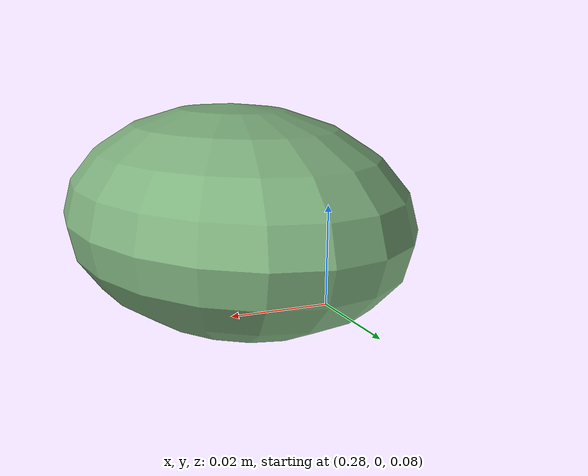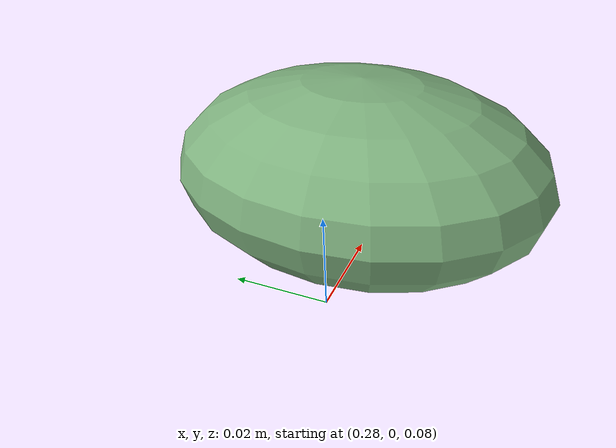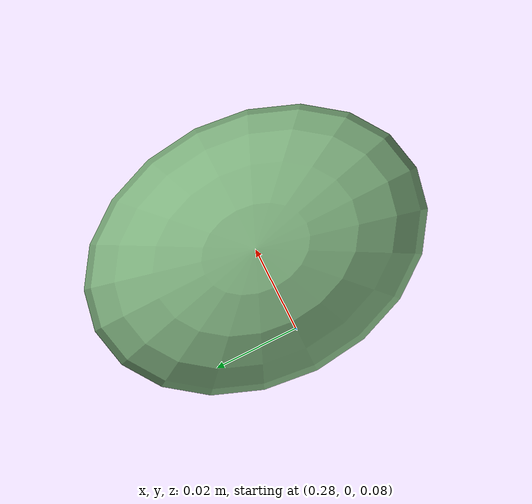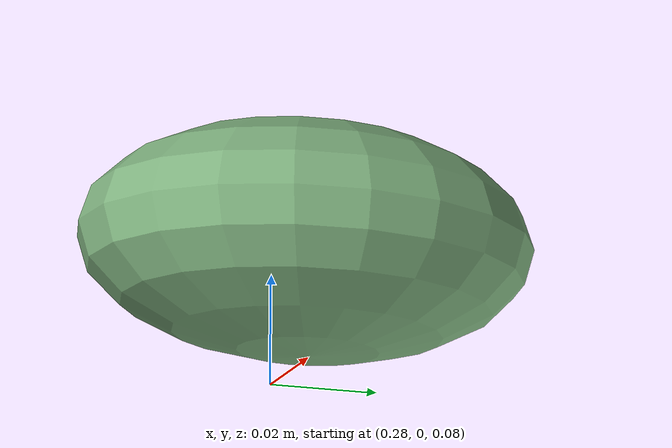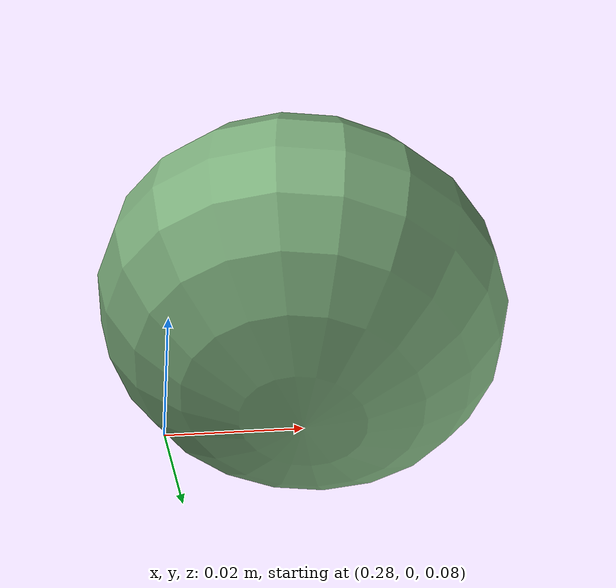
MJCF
<mujoco model="right_shadow_hand scene">
  <include file="right_hand.xml"/>

  <statistic extent="0.3" center="0.3 0 0"/>

  <visual>
    <rgba haze="0.15 0.25 0.35 1"/>
    <quality shadowsize="8192"/>
    <global azimuth="220" elevation="-30"/>
  </visual>

  <asset>
    <texture type="skybox" builtin="gradient" rgb1="0.3 0.5 0.7" rgb2="0 0 0" width="512" height="3072"/>
    <texture type="2d" name="groundplane" builtin="checker" mark="edge" rgb1="0.2 0.3 0.4" rgb2="0.1 0.2 0.3"
      markrgb="0.8 0.8 0.8" width="300" height="300"/>
    <material name="groundplane" texture="groundplane" texuniform="true" texrepeat="5 5" reflectance="0.2"/>
  </asset>

  <worldbody>
    <light pos="0 0 1"/>
    <light pos="0.3 0 1.5" dir="0 0 -1" directional="true"/>
    <geom name="floor" pos="0 0 -0.1" size="0 0 0.05" type="plane" material="groundplane"/>
    <body name="object" pos="0.3 0 0.1">
      <freejoint/>
      <geom type="ellipsoid" size="0.03 0.04 0.02" rgba="0.5 0.7 0.5 1" condim="6" priority="1"
        friction="0.5 0.01 0.003"/>
    </body>
  </worldbody>
</mujoco>

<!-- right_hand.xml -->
<mujoco model="right_shadow_hand">

      <body name="rh_wrist" pos="0.01 0 0.15301" quat="1 0 0 1">
        <inertial mass="0.1" pos="0 0 0.029" quat="0.5 0.5 0.5 0.5" diaginertia="6.4e-05 4.38e-05 3.5e-05"/>
        <joint class="right_wrist_y" name="rh_WRJ2"/>
        <geom class="right_plastic_visual" mesh="right_wrist" material="metallic"/>
        <geom size="0.011 0.005" pos="-0.026 0 0.034" quat="1 0 1 0" type="cylinder" class="right_plastic_collision"/>
        <geom size="0.011 0.005" pos="0.031 0 0.034" quat="1 0 1 0" type="cylinder" class="right_plastic_collision"/>
        <geom size="0.0135 0.009 0.005" pos="-0.021 0 0.011" quat="0.923879 0 0.382684 0" type="box"
          class="right_plastic_collision"/>
        <geom size="0.0135 0.009 0.005" pos="0.026 0 0.01" quat="0.923879 0 -0.382684 0" type="box"
          class="right_plastic_collision"/>
        <body name="rh_palm" pos="0 0 0.034">
          <inertial mass="0.3" pos="0 0 0.035" quat="1 0 0 1" diaginertia="0.0005287 0.0003581 0.000191"/>
          <joint class="right_wrist_x" name="rh_WRJ1"/>
          <geom class="right_plastic_visual" mesh="right_palm"/>
          <geom size="0.031 0.0035 0.049" pos="0.011 0.0085 0.038" type="box" class="right_plastic_collision"/>
          <geom size="0.018 0.0085 0.049" pos="-0.002 -0.0035 0.038" type="box" class="right_plastic_collision"/>
          <geom size="0.013 0.0085 0.005" pos="0.029 -0.0035 0.082" type="box" class="right_plastic_collision"/>
          <geom size="0.013 0.007 0.009" pos="0.0265 -0.001 0.07" quat="0.987241 0.0990545 0.0124467 0.124052"
            type="box" class="right_plastic_collision"/>
          <geom size="0.0105 0.0135 0.012" pos="0.0315 -0.0085 0.001" type="box" class="right_plastic_collision"/>
          <geom size="0.011 0.0025 0.015" pos="0.0125 -0.015 0.004" quat="0.971338 0 0 -0.237703" type="box"
            class="right_plastic_collision"/>
          <geom size="0.009 0.012 0.002" pos="0.011 0 0.089" type="box" class="right_plastic_collision"/>
          <geom size="0.01 0.012 0.02" pos="-0.03 0 0.009" type="box" class="right_plastic_collision"/>
          <body name="rh_ffknuckle" pos="0.033 0 0.095">
            <inertial mass="0.008" pos="0 0 0" quat="0.5 0.5 -0.5 0.5" diaginertia="3.2e-07 2.6e-07 2.6e-07"/>
            <joint name="rh_FFJ4" class="right_knuckle"/>
            <geom pos="0 0 0.0005" class="right_plastic_visual" mesh="right_f_knuckle" material="metallic"/>
            <geom size="0.009 0.009" quat="1 0 1 0" type="cylinder" class="right_plastic_collision"/>
            <body name="rh_ffproximal">
              <inertial mass="0.03" pos="0 0 0.0225" quat="1 0 0 1" diaginertia="1e-05 9.8e-06 1.8e-06"/>
              <joint name="rh_FFJ3" class="right_proximal"/>
              <geom class="right_plastic_visual" mesh="right_f_proximal"/>
              <geom size="0.009 0.02" pos="0 0 0.025" type="capsule" class="right_plastic_collision"/>
              <body name="rh_ffmiddle" pos="0 0 0.045">
                <inertial mass="0.017" pos="0 0 0.0125" quat="1 0 0 1" diaginertia="2.7e-06 2.6e-06 8.7e-07"/>
                <joint name="rh_FFJ2" class="right_middle_distal"/>
                <geom class="right_plastic_visual" mesh="right_f_middle"/>
                <geom size="0.009 0.0125" pos="0 0 0.0125" type="capsule" class="right_plastic_collision"/>
                <body name="rh_ffdistal" pos="0 0 0.025">
                  <inertial mass="0.013" pos="0 0 0.0130769" quat="1 0 0 1"
                    diaginertia="1.28092e-06 1.12092e-06 5.3e-07"/>
                  <joint name="rh_FFJ1" class="right_middle_distal"/>
                  <geom class="right_plastic_visual" mesh="right_f_distal_pst"/>
                  <geom class="right_plastic_collision" type="mesh" mesh="right_f_distal_pst"/>
                </body>
              </body>
            </body>
          </body>
          <body name="rh_mfknuckle" pos="0.011 0 0.099">
            <inertial mass="0.008" pos="0 0 0" quat="0.5 0.5 -0.5 0.5" diaginertia="3.2e-07 2.6e-07 2.6e-07"/>
            <joint name="rh_MFJ4" class="right_knuckle"/>
            <geom pos="0 0 0.0005" class="right_plastic_visual" mesh="right_f_knuckle" material="metallic"/>
            <geom size="0.009 0.009" quat="1 0 1 0" type="cylinder" class="right_plastic_collision"/>
            <body name="rh_mfproximal">
              <inertial mass="0.03" pos="0 0 0.0225" quat="1 0 0 1" diaginertia="1e-05 9.8e-06 1.8e-06"/>
              <joint name="rh_MFJ3" class="right_proximal"/>
              <geom class="right_plastic_visual" mesh="right_f_proximal"/>
              <geom size="0.009 0.02" pos="0 0 0.025" type="capsule" class="right_plastic_collision"/>
              <body name="rh_mfmiddle" pos="0 0 0.045">
                <inertial mass="0.017" pos="0 0 0.0125" quat="1 0 0 1" diaginertia="2.7e-06 2.6e-06 8.7e-07"/>
                <joint name="rh_MFJ2" class="right_middle_distal"/>
                <geom class="right_plastic_visual" mesh="right_f_middle"/>
                <geom size="0.009 0.0125" pos="0 0 0.0125" type="capsule" class="right_plastic_collision"/>
                <body name="rh_mfdistal" pos="0 0 0.025">
                  <inertial mass="0.013" pos="0 0 0.0130769" quat="1 0 0 1"
                    diaginertia="1.28092e-06 1.12092e-06 5.3e-07"/>
                  <joint name="rh_MFJ1" class="right_middle_distal"/>
                  <geom class="right_plastic_visual" mesh="right_f_distal_pst"/>
                  <geom class="right_plastic_collision" type="mesh" mesh="right_f_distal_pst"/>
                </body>
              </body>
            </body>
          </body>
          <body name="rh_rfknuckle" pos="-0.011 0 0.095">
            <inertial mass="0.008" pos="0 0 0" quat="0.5 0.5 -0.5 0.5" diaginertia="3.2e-07 2.6e-07 2.6e-07"/>
            <joint name="rh_RFJ4" class="right_knuckle" axis="0 1 0"/>
            <geom pos="0 0 0.0005" class="right_plastic_visual" mesh="right_f_knuckle" material="metallic"/>
            <geom size="0.009 0.009" quat="1 0 1 0" type="cylinder" class="right_plastic_collision"/>
            <body name="rh_rfproximal">
              <inertial mass="0.03" pos="0 0 0.0225" quat="1 0 0 1" diaginertia="1e-05 9.8e-06 1.8e-06"/>
              <joint name="rh_RFJ3" class="right_proximal"/>
              <geom class="right_plastic_visual" mesh="right_f_proximal"/>
              <geom size="0.009 0.02" pos="0 0 0.025" type="capsule" class="right_plastic_collision"/>
              <body name="rh_rfmiddle" pos="0 0 0.045">
                <inertial mass="0.017" pos="0 0 0.0125" quat="1 0 0 1" diaginertia="2.7e-06 2.6e-06 8.7e-07"/>
                <joint name="rh_RFJ2" class="right_middle_distal"/>
                <geom class="right_plastic_visual" mesh="right_f_middle"/>
                <geom size="0.009 0.0125" pos="0 0 0.0125" type="capsule" class="right_plastic_collision"/>
                <body name="rh_rfdistal" pos="0 0 0.025">
                  <inertial mass="0.013" pos="0 0 0.0130769" quat="1 0 0 1"
                    diaginertia="1.28092e-06 1.12092e-06 5.3e-07"/>
                  <joint name="rh_RFJ1" class="right_middle_distal"/>
                  <geom class="right_plastic_visual" mesh="right_f_distal_pst"/>
                  <geom class="right_plastic_collision" type="mesh" mesh="right_f_distal_pst"/>
                </body>
              </body>
            </body>
          </body>
          <body name="rh_lfmetacarpal" pos="-0.033 0 0.02071">
            <inertial mass="0.03" pos="0 0 0.04" quat="1 0 0 1" diaginertia="1.638e-05 1.45e-05 4.272e-06"/>
            <joint name="rh_LFJ5" class="right_metacarpal"/>
            <geom class="right_plastic_visual" mesh="right_lf_metacarpal"/>
            <geom size="0.011 0.012 0.025" pos="0.002 0 0.033" type="box" class="right_plastic_collision"/>
            <body name="rh_lfknuckle" pos="0 0 0.06579">
              <inertial mass="0.008" pos="0 0 0" quat="0.5 0.5 -0.5 0.5" diaginertia="3.2e-07 2.6e-07 2.6e-07"/>
              <joint name="rh_LFJ4" class="right_knuckle" axis="0 1 0"/>
              <geom pos="0 0 0.0005" class="right_plastic_visual" mesh="right_f_knuckle" material="metallic"/>
              <geom size="0.009 0.009" quat="1 0 1 0" type="cylinder" class="right_plastic_collision"/>
              <body name="rh_lfproximal">
                <inertial mass="0.03" pos="0 0 0.0225" quat="1 0 0 1" diaginertia="1e-05 9.8e-06 1.8e-06"/>
                <joint name="rh_LFJ3" class="right_proximal"/>
                <geom class="right_plastic_visual" mesh="right_f_proximal"/>
                <geom size="0.009 0.02" pos="0 0 0.025" type="capsule" class="right_plastic_collision"/>
                <body name="rh_lfmiddle" pos="0 0 0.045">
                  <inertial mass="0.017" pos="0 0 0.0125" quat="1 0 0 1" diaginertia="2.7e-06 2.6e-06 8.7e-07"/>
                  <joint name="rh_LFJ2" class="right_middle_distal"/>
                  <geom class="right_plastic_visual" mesh="right_f_middle"/>
                  <geom size="0.009 0.0125" pos="0 0 0.0125" type="capsule" class="right_plastic_collision"/>
                  <body name="rh_lfdistal" pos="0 0 0.025">
                    <inertial mass="0.013" pos="0 0 0.0130769" quat="1 0 0 1"
                      diaginertia="1.28092e-06 1.12092e-06 5.3e-07"/>
                    <joint name="rh_LFJ1" class="right_middle_distal"/>
                    <geom class="right_plastic_visual" mesh="right_f_distal_pst"/>
                    <geom class="right_plastic_collision" type="mesh" mesh="right_f_distal_pst"/>
                  </body>
                </body>
              </body>
            </body>
          </body>
          <body name="rh_thbase" pos="0.034 -0.00858 0.029" quat="0.92388 0 0.382683 0">
            <inertial mass="0.01" pos="0 0 0" diaginertia="1.6e-07 1.6e-07 1.6e-07"/>
            <joint name="rh_THJ5" class="right_thbase"/>
            <geom class="right_plastic_collision" size="0.013"/>
            <body name="rh_thproximal">
              <inertial mass="0.04" pos="0 0 0.019" diaginertia="1.36e-05 1.36e-05 3.13e-06"/>
              <joint name="rh_THJ4" class="right_thproximal"/>
              <geom class="right_plastic_visual" mesh="right_th_proximal"/>
              <geom class="right_plastic_collision" size="0.0105 0.009" pos="0 0 0.02" type="capsule"/>
              <body name="rh_thhub" pos="0 0 0.038">
                <inertial mass="0.005" pos="0 0 0" diaginertia="1e-06 1e-06 3e-07"/>
                <joint name="rh_THJ3" class="right_thhub"/>
                <geom size="0.011" class="right_plastic_collision"/>
                <body name="rh_thmiddle">
                  <inertial mass="0.02" pos="0 0 0.016" diaginertia="5.1e-06 5.1e-06 1.21e-06"/>
                  <joint name="rh_THJ2" class="right_thmiddle"/>
                  <geom class="right_plastic_visual" mesh="right_th_middle"/>
                  <geom size="0.009 0.009" pos="0 0 0.012" type="capsule" class="right_plastic_collision"/>
                  <geom size="0.01" pos="0 0 0.03" class="right_plastic_collision"/>
                  <body name="rh_thdistal" pos="0 0 0.032" quat="1 0 0 -1">
                    <inertial mass="0.017" pos="0 0 0.0145588" quat="1 0 0 1"
                      diaginertia="2.37794e-06 2.27794e-06 1e-06"/>
                    <joint name="rh_THJ1" class="right_thdistal"/>
                    <geom class="right_plastic_visual" mesh="right_th_distal_pst"/>
                    <geom class="right_plastic_collision" type="mesh" mesh="right_th_distal_pst"/>
                  </body>
                </body>
              </body>
            </body>
          </body>
        </body>
      </body>

</mujoco>
